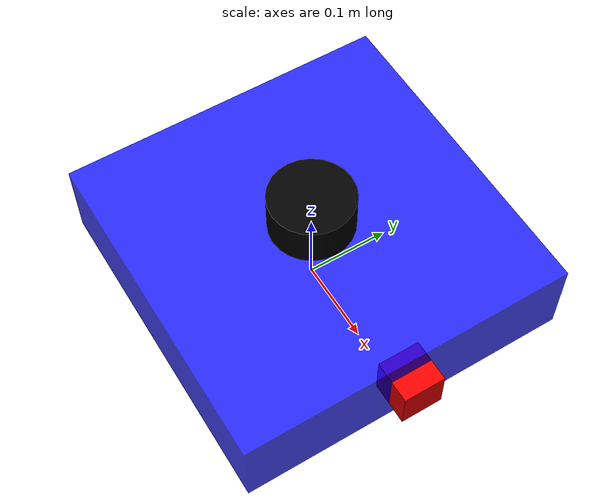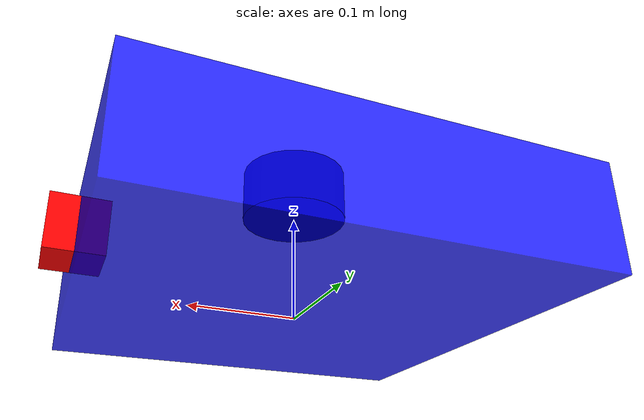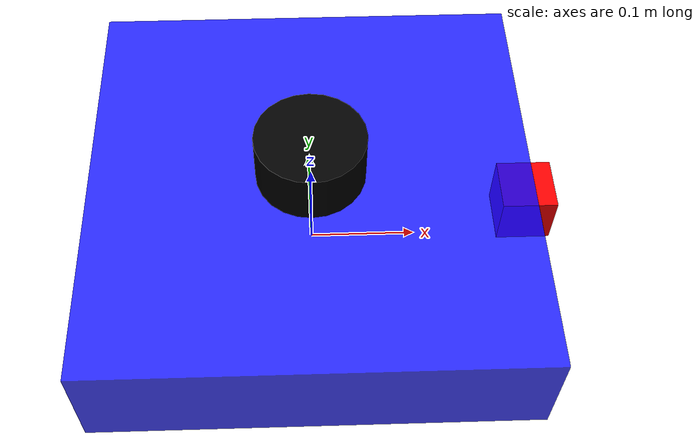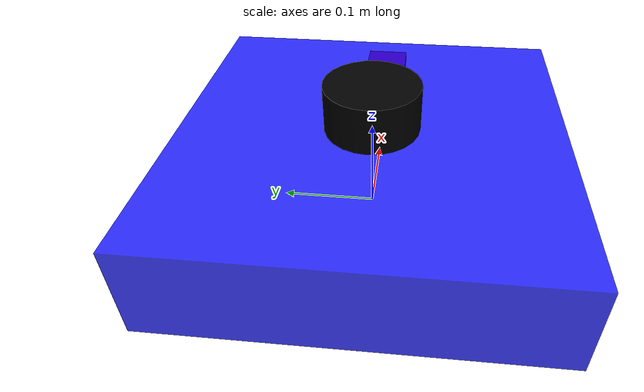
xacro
<?xml version="1.0"?>
<robot name="drone_with_sensors" xmlns:xacro="http://www.ros.org/wiki/xacro">

  <!-- 基本属性 -->
  <xacro:property name="M_PI" value="3.1415926535897931" />

  <!-- 无人机本体 -->
  <link name="base_link">
    <visual>
      <origin xyz="0 0 0" rpy="0 0 0"/>
      <geometry>
        <box size="0.4 0.4 0.1"/>
      </geometry>
      <material name="blue">
        <color rgba="0 0 1 0.8"/>
      </material>
    </visual>
    <collision>
      <origin xyz="0 0 0" rpy="0 0 0"/>
      <geometry>
        <box size="0.4 0.4 0.1"/>
      </geometry>
    </collision>
    <inertial>
      <mass value="1.5"/>
      <origin xyz="0 0 0" rpy="0 0 0"/>
      <inertia ixx="0.0347" ixy="0" ixz="0" iyy="0.0458" iyz="0" izz="0.0977"/>
    </inertial>
  </link>

  <!-- 地面投影 -->
  <link name="base_footprint"/>
  <joint name="base_joint" type="fixed">
    <parent link="base_footprint"/>
    <child link="base_link"/>
    <origin xyz="0 0 0.05" rpy="0 0 0"/>
  </joint>

  <!-- 激光雷达 -->
  <link name="lidar_frame">
    <visual>
      <origin xyz="0 0 0" rpy="0 0 0"/>
      <geometry>
        <cylinder radius="0.05" length="0.05"/>
      </geometry>
      <material name="black">
        <color rgba="0 0 0 1"/>
      </material>
    </visual>
    <collision>
      <origin xyz="0 0 0" rpy="0 0 0"/>
      <geometry>
        <cylinder radius="0.05" length="0.05"/>
      </geometry>
    </collision>
    <inertial>
      <mass value="0.1"/>
      <origin xyz="0 0 0" rpy="0 0 0"/>
      <inertia ixx="0.0001" ixy="0" ixz="0" iyy="0.0001" iyz="0" izz="0.0001"/>
    </inertial>
  </link>

  <joint name="lidar_joint" type="fixed">
    <parent link="base_link"/>
    <child link="lidar_frame"/>
    <origin xyz="0 0 0.075" rpy="0 0 0"/>
  </joint>

  <!-- 相机 -->
  <link name="camera_link">
    <visual>
      <origin xyz="0 0 0" rpy="0 0 0"/>
      <geometry>
        <box size="0.05 0.05 0.05"/>
      </geometry>
      <material name="red">
        <color rgba="1 0 0 1"/>
      </material>
    </visual>
    <collision>
      <origin xyz="0 0 0" rpy="0 0 0"/>
      <geometry>
        <box size="0.05 0.05 0.05"/>
      </geometry>
    </collision>
    <inertial>
      <mass value="0.1"/>
      <origin xyz="0 0 0" rpy="0 0 0"/>
      <inertia ixx="0.0001" ixy="0" ixz="0" iyy="0.0001" iyz="0" izz="0.0001"/>
    </inertial>
  </link>

  <joint name="camera_joint" type="fixed">
    <parent link="base_link"/>
    <child link="camera_link"/>
    <origin xyz="0.2 0 0" rpy="0 0 0"/>
  </joint>

  <!-- 相机光学框架 -->
  <link name="camera_optical_frame"/>

  <joint name="camera_optical_joint" type="fixed">
    <parent link="camera_link"/>
    <child link="camera_optical_frame"/>
    <origin xyz="0 0 0" rpy="${-M_PI/2} 0 ${-M_PI/2}"/>
  </joint>

</robot>
